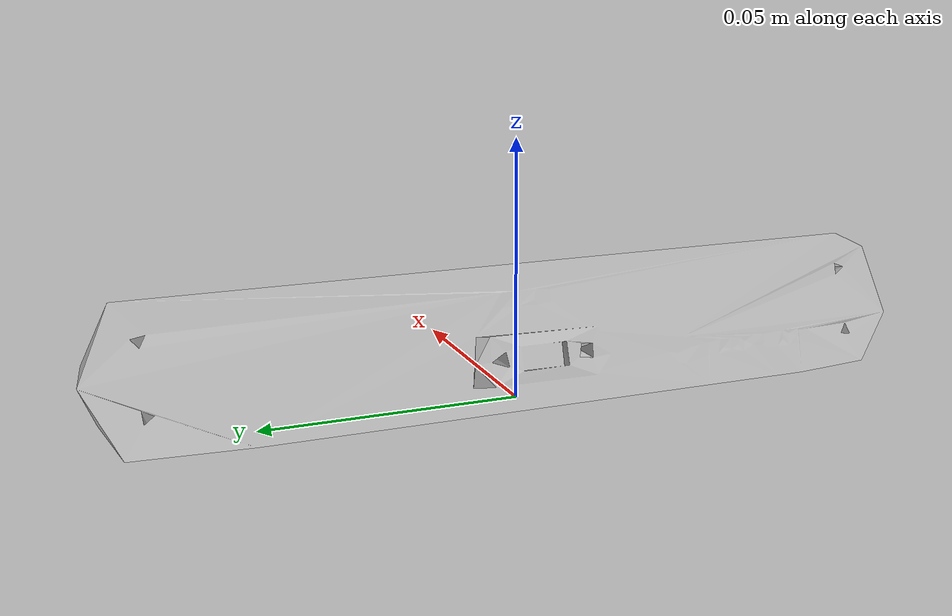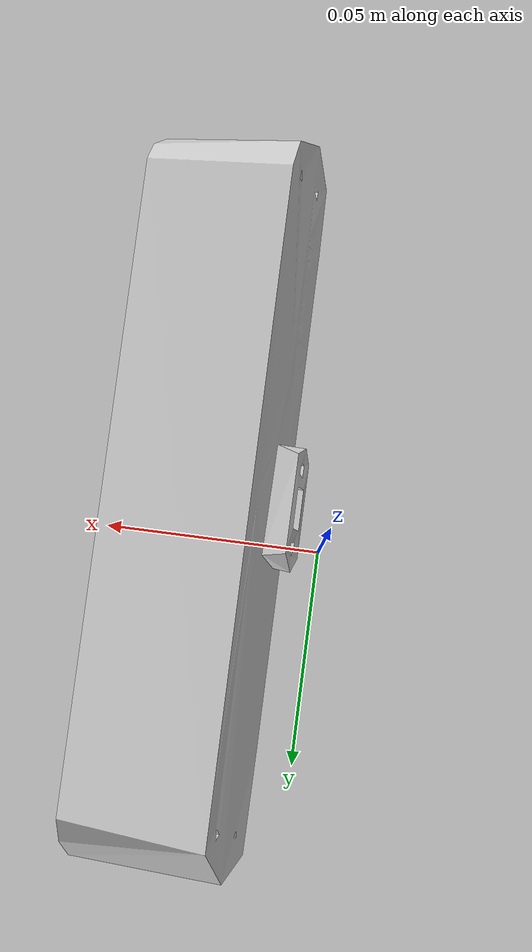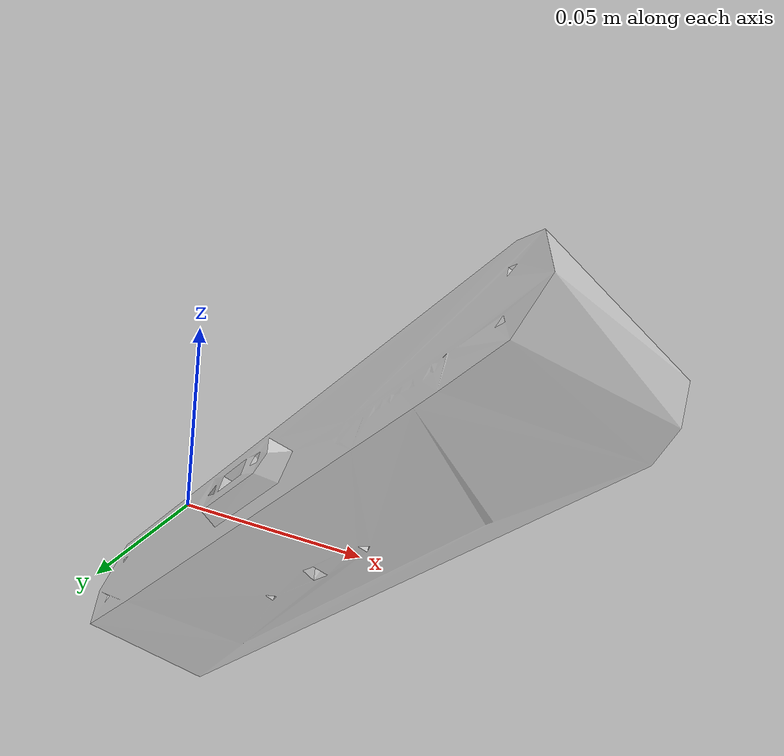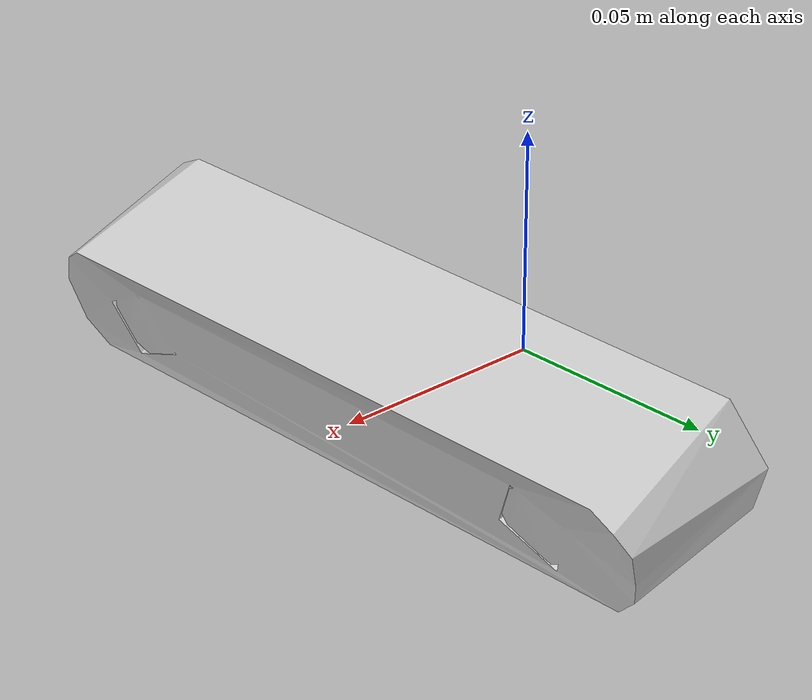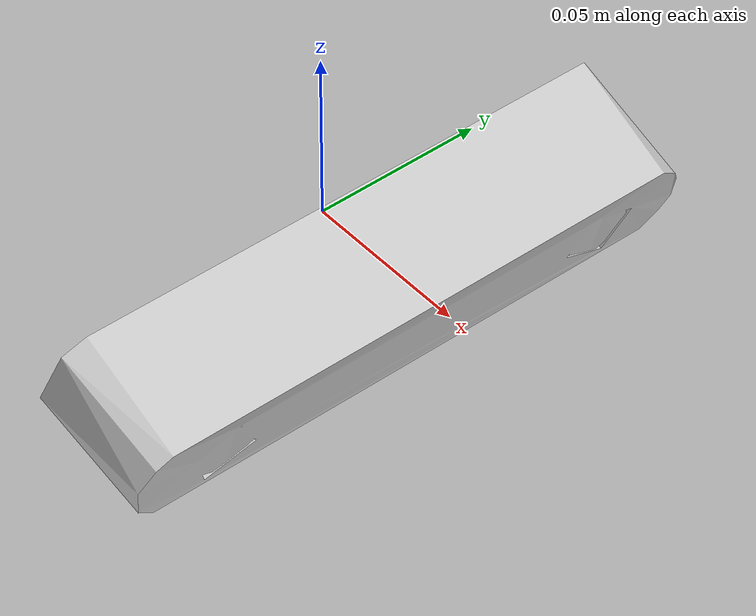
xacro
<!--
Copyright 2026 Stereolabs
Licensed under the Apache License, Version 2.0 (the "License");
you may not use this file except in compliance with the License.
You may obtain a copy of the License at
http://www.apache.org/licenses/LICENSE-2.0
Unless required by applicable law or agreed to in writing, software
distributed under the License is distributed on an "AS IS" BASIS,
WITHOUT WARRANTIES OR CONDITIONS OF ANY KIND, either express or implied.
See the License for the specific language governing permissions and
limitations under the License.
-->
<?xml version="1.0"?>

<robot name="stereolabs_camera" xmlns:xacro="http://ros.org/wiki/xacro">
  <xacro:arg name="camera_name"   default="zed" />
  <xacro:arg name="camera_model"  default="zed" />
  <xacro:arg name="custom_baseline"  default="0.0" />
  <!-- If GNSS fusion is enabled the position of the antenna with respect to the camera mount point is required -->
  <xacro:arg name="enable_gnss"   default="false" />
  <xacro:arg name="gnss_x" default="0.0" />
  <xacro:arg name="gnss_y" default="0.0" />
  <xacro:arg name="gnss_z" default="0.0" />

  <xacro:include filename="$(find zed_description)/urdf/zed_macro.urdf.xacro" />
  <xacro:zed_camera name="$(arg camera_name)" model="$(arg camera_model)" custom_baseline="$(arg custom_baseline)" enable_gnss="$(arg enable_gnss)">
	    <origin xyz="$(arg gnss_x) $(arg gnss_y) $(arg gnss_z)" rpy="0 0 0"/>
  </xacro:zed_camera>
</robot>

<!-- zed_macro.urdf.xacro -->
<robot xmlns:xacro="http://wiki.ros.org/xacro">
  <xacro:property name="M_PI"     value="3.1415926535897931" />

  <xacro:macro name="zed_camera" params="name=zed model=zed enable_gnss=false custom_baseline=0 *gnss_origin">
    <xacro:if value="${model == 'zed'}">
      <xacro:property name="baseline" value="0.12" />
      <xacro:property name="height" value="0.03" />
      <xacro:property name="bottom_slope" value="0.05" />
      <xacro:property name="screw_offset_x" value="0.0" />
      <xacro:property name="screw_offset_z" value="0.0" />
      <xacro:property name="optical_offset_x" value="-0.005" />
      <xacro:property name="mono" value="false" />
      <xacro:property name="mat" value="0.8 0.8 0.8 1.0" />
    </xacro:if>
    <xacro:if value="${model == 'zedm'}">
      <xacro:property name="baseline" value="0.063" />
      <xacro:property name="height" value="0.0265" />
      <xacro:property name="bottom_slope" value="0.0" />
      <xacro:property name="screw_offset_x" value="0.0" />
      <xacro:property name="screw_offset_z" value="0.0" />
      <xacro:property name="optical_offset_x" value="0.0" />
      <xacro:property name="mono" value="false" />
      <xacro:property name="mat" value="0 0 0 1.0" />
    </xacro:if>
    <xacro:if value="${model == 'zed2'}">
      <xacro:property name="baseline" value="0.12" />
      <xacro:property name="height" value="0.03" />
      <xacro:property name="bottom_slope" value="0.05" />
      <xacro:property name="screw_offset_x" value="0.0" />
      <xacro:property name="screw_offset_z" value="0.0" />
      <xacro:property name="optical_offset_x" value="-0.005" />
      <xacro:property name="mono" value="false" />
      <xacro:property name="mat" value="0.25 0.25 0.25 1.0" />
    </xacro:if>
    <xacro:if value="${model == 'zed2i'}">
      <xacro:property name="baseline" value="0.12" />
      <xacro:property name="height" value="0.03" />
      <xacro:property name="bottom_slope" value="0.0" />
      <xacro:property name="screw_offset_x" value="-0.01" />
      <xacro:property name="screw_offset_z" value="0.0" />
      <xacro:property name="optical_offset_x" value="-0.005" />
      <xacro:property name="mono" value="false" />
      <xacro:property name="mat" value="0.25 0.25 0.25 1.0" />
    </xacro:if>
    <xacro:if value="${model == 'zedx'}">
      <xacro:property name="baseline" value="0.12" />
      <xacro:property name="height" value="0.032" />
      <xacro:property name="bottom_slope" value="0.0" />
      <xacro:property name="screw_offset_x" value="0.0" />
      <xacro:property name="screw_offset_z" value="-0.016" />
      <xacro:property name="optical_offset_x" value="-0.005" />
      <xacro:property name="mono" value="false" />
      <xacro:property name="mat" value="0.25 0.25 0.25 1.0" />
    </xacro:if>
    <xacro:if value="${model == 'zedxhdr'}">
      <xacro:property name="baseline" value="0.12" />
      <xacro:property name="height" value="0.032" />
      <xacro:property name="bottom_slope" value="0.0" />
      <xacro:property name="screw_offset_x" value="0.0" />
      <xacro:property name="screw_offset_z" value="-0.016" />
      <xacro:property name="optical_offset_x" value="-0.005" />
      <xacro:property name="mono" value="false" />
      <xacro:property name="mat" value="0.25 0.25 0.25 1.0" />
    </xacro:if>
    <xacro:if value="${model == 'zedxm'}">
      <xacro:property name="baseline" value="0.05" />
      <xacro:property name="height" value="0.032" />
      <xacro:property name="bottom_slope" value="0.0" />
      <xacro:property name="screw_offset_x" value="0.0" />
      <xacro:property name="screw_offset_z" value="-0.016" />
      <xacro:property name="optical_offset_x" value="-0.005" />
      <xacro:property name="mono" value="false" />
      <xacro:property name="mat" value="0.25 0.25 0.25 1.0" />
    </xacro:if>
    <xacro:if value="${model == 'zedxnano'}">
      <xacro:property name="baseline" value="0.018" />
      <xacro:property name="height" value="0.0305" />
      <xacro:property name="bottom_slope" value="0.0" />
      <xacro:property name="screw_offset_x" value="0.0" />
      <xacro:property name="screw_offset_z" value="-0.01525" />
      <xacro:property name="optical_offset_x" value="-0.0035" />
      <xacro:property name="mono" value="false" />
      <xacro:property name="mat" value="0.25 0.25 0.25 1.0" />
    </xacro:if>
    <xacro:if value="${model == 'zedxhdrmini'}">
      <xacro:property name="baseline" value="0.05" />
      <xacro:property name="height" value="0.032" />
      <xacro:property name="bottom_slope" value="0.0" />
      <xacro:property name="screw_offset_x" value="0.0" />
      <xacro:property name="screw_offset_z" value="-0.016" />
      <xacro:property name="optical_offset_x" value="-0.005" />
      <xacro:property name="mono" value="false" />
      <xacro:property name="mat" value="0.25 0.25 0.25 1.0" />
    </xacro:if>
    <xacro:if value="${model == 'zedxhdrmax'}">
      <xacro:property name="baseline" value="0.170" />
      <xacro:property name="height" value="0.032" />
      <xacro:property name="bottom_slope" value="0.0" />
      <xacro:property name="screw_offset_x" value="0.0" />
      <xacro:property name="screw_offset_z" value="-0.016" />
      <xacro:property name="optical_offset_x" value="-0.005" />
      <xacro:property name="mono" value="false" />
      <xacro:property name="mat" value="0.25 0.25 0.25 1.0" />
    </xacro:if>
    <xacro:if value="${model == 'virtual'}">
      <xacro:property name="baseline" value="${custom_baseline}" />
      <xacro:property name="height" value="0.031" />
      <xacro:property name="bottom_slope" value="0.0" />
      <xacro:property name="screw_offset_x" value="0.00" />
      <xacro:property name="screw_offset_z" value="-0.0155" />
      <xacro:property name="optical_offset_x" value="0.0" />
      <xacro:property name="mono" value="false" />
      <xacro:property name="mat" value="0.25 0.25 0.25 1.0" />
    </xacro:if>
    <xacro:if value="${model == 'zedxonegs'}">
      <xacro:property name="baseline" value="0.0" />
      <xacro:property name="height" value="0.031" />
      <xacro:property name="bottom_slope" value="0.0" />
      <xacro:property name="screw_offset_x" value="0.0" />
      <xacro:property name="screw_offset_z" value="-0.0155" />
      <xacro:property name="optical_offset_x" value="-0.005" />
      <xacro:property name="mono" value="true" />
      <xacro:property name="mat" value="0.25 0.25 0.25 1.0" />
    </xacro:if>
    <xacro:if value="${model == 'zedxones'}">
      <xacro:property name="baseline" value="0.0" />
      <xacro:property name="height" value="0.025" />
      <xacro:property name="bottom_slope" value="0.0" />
      <xacro:property name="screw_offset_x" value="0.0" />
      <xacro:property name="screw_offset_z" value="-0.0125" />
      <xacro:property name="optical_offset_x" value="0.0" />
      <xacro:property name="mono" value="true" />
      <xacro:property name="mat" value="0.25 0.25 0.25 1.0" />
    </xacro:if>
    <xacro:if value="${model == 'zedxone4k'}">
      <xacro:property name="baseline" value="0.0" />
      <xacro:property name="height" value="0.031" />
      <xacro:property name="bottom_slope" value="0.0" />
      <xacro:property name="screw_offset_x" value="0.00" />
      <xacro:property name="screw_offset_z" value="-0.0155" />
      <xacro:property name="optical_offset_x" value="0.0" />
      <xacro:property name="mono" value="true" />
      <xacro:property name="mat" value="0.25 0.25 0.25 1.0" />
    </xacro:if>
    <xacro:if value="${model == 'zedxonehdr'}">
      <xacro:property name="baseline" value="0.0" />
      <xacro:property name="height" value="0.025" />
      <xacro:property name="bottom_slope" value="0.0" />
      <xacro:property name="screw_offset_x" value="0.00" />
      <xacro:property name="screw_offset_z" value="-0.0125" />
      <xacro:property name="optical_offset_x" value="0.0" />
      <xacro:property name="mono" value="true" />
      <xacro:property name="mat" value="0.25 0.25 0.25 1.0" />
    </xacro:if>
    <xacro:if value="${model == 'zedxonecore'}">
      <xacro:property name="baseline" value="0.0" />
      <xacro:property name="height" value="0.027" />
      <xacro:property name="bottom_slope" value="0.0" />
      <xacro:property name="screw_offset_x" value="0.00" />
      <xacro:property name="screw_offset_z" value="-0.0135" />
      <xacro:property name="optical_offset_x" value="0.00086" />
      <xacro:property name="mono" value="true" />
      <xacro:property name="mat" value="0.25 0.25 0.25 1.0" />
    </xacro:if>

    <!-- Camera mounting point (the threaded screw hole in the bottom) -->
    <link name="${name}_camera_link" />

    <!-- Camera Center -->
    <link name="${name}_camera_center">
      <xacro:unless value="${model == 'virtual'}">
        <visual>
          <origin xyz="${screw_offset_x} 0 ${screw_offset_z}" rpy="0 0 0"/>
          <geometry>
            <mesh filename="package://zed_description/meshes/${model}.stl"/>
          </geometry>
          <material name="cam_mat">
            <color rgba="${mat}"/>
          </material>
        </visual>
        <collision>
          <origin xyz="${screw_offset_x} 0 ${screw_offset_z}" rpy="0 0 0"/>
          <geometry>
            <mesh filename="package://zed_description/meshes/${model}.stl"/>
          </geometry>
        </collision>
      </xacro:unless>
    </link>
    <joint name="${name}_camera_center_joint" type="fixed">
      <parent link="${name}_camera_link"/>
      <child link="${name}_camera_center"/>
      <origin xyz="0 0 ${height/2}" rpy="0 ${bottom_slope} 0" />
    </joint>

    <xacro:unless value="${mono}">
      <!-- Left Camera -->
      <link name="${name}_left_camera_frame">
        <xacro:if value="${model == 'virtual'}">
          <visual>
            <origin xyz="0 0 0" rpy="0 0 0"/>
            <geometry>
              <mesh filename="package://zed_description/meshes/${model}.stl"/>
            </geometry>
            <material name="cam_mat">
              <color rgba="${mat}"/>
            </material>
          </visual>
          <collision>
            <origin xyz="0 0 0" rpy="0 0 0"/>
            <geometry>
              <mesh filename="package://zed_description/meshes/${model}.stl"/>
            </geometry>
          </collision>
        </xacro:if>
      </link>
      <joint name="${name}_left_camera_joint" type="fixed">
        <parent link="${name}_camera_center"/>
        <child link="${name}_left_camera_frame"/>
        <origin xyz="${optical_offset_x} ${baseline/2} 0" rpy="0 0 0" />
      </joint>

<link name="${name}_left_camera_frame_optical"/>
      <joint name="${name}_left_camera_optical_joint" type="fixed">
        <origin xyz="0 0 0" rpy="-${M_PI/2} 0.0 -${M_PI/2}"/>
        <parent link="${name}_left_camera_frame"/>
<child link="${name}_left_camera_frame_optical"/>
      </joint>

      <!-- Right Camera -->
      <link name="${name}_right_camera_frame">
        <xacro:if value="${model == 'virtual'}">
          <visual>
            <origin xyz="0 0 0" rpy="0 0 0"/>
            <geometry>
              <mesh filename="package://zed_description/meshes/${model}.stl"/>
            </geometry>
            <material name="cam_mat">
              <color rgba="${mat}"/>
            </material>
          </visual>
          <collision>
            <origin xyz="0 0 0" rpy="0 0 0"/>
            <geometry>
              <mesh filename="package://zed_description/meshes/${model}.stl"/>
            </geometry>
          </collision>
        </xacro:if>
      </link>
      <joint name="${name}_right_camera_joint" type="fixed">
        <parent link="${name}_camera_center"/>
        <child link="${name}_right_camera_frame"/>
        <origin xyz="${optical_offset_x} -${baseline/2} 0" rpy="0 0 0" />
      </joint>

<link name="${name}_right_camera_frame_optical"/>
      <joint name="${name}_right_camera_optical_joint" type="fixed">
        <origin xyz="0 0 0" rpy="-${M_PI/2} 0.0 -${M_PI/2}"/>
        <parent link="${name}_right_camera_frame"/>
<child link="${name}_right_camera_frame_optical"/>
      </joint>

      <!-- ZED2 Sensors -->
      <xacro:if value="${model == 'zed2'}">
        <link name="${name}_mag_link" />
        <joint name="${name}_mag_joint" type="fixed">
          <parent link="${name}_camera_center"/>
          <child link="${name}_mag_link"/>
          <origin xyz="0 0 0" rpy="0 0 0" />
        </joint>

        <link name="${name}_baro_link" />
        <joint name="${name}_baro_joint" type="fixed">
          <parent link="${name}_camera_center"/>
          <child link="${name}_baro_link"/>
          <origin xyz="0 0 0" rpy="0 0 0" />
        </joint>

        <link name="${name}_temp_left_link" />
        <joint name="${name}_temp_left_joint" type="fixed">
          <parent link="${name}_left_camera_frame"/>
          <child link="${name}_temp_left_link"/>
          <origin xyz="0 0 0" rpy="0 0 0" />
        </joint>

        <link name="${name}_temp_right_link" />
        <joint name="${name}_temp_right_joint" type="fixed">
          <parent link="${name}_right_camera_frame"/>
          <child link="${name}_temp_right_link"/>
          <origin xyz="0 0 0" rpy="0 0 0" />
        </joint>
      </xacro:if>
    </xacro:unless>

    <xacro:if value="${mono}">
      <!-- Camera -->
      <link name="${name}_camera_frame" />
      <joint name="${name}_camera_joint" type="fixed">
        <parent link="${name}_camera_center"/>
        <child link="${name}_camera_frame"/>
        <origin xyz="${optical_offset_x} 0 0" rpy="0 0 0" />
      </joint>

<link name="${name}_camera_frame_optical"/>
      <joint name="${name}_camera_optical_joint" type="fixed">
        <origin xyz="0 0 0" rpy="-${M_PI/2} 0.0 -${M_PI/2}"/>
        <parent link="${name}_camera_frame"/>
<child link="${name}_camera_frame_optical"/>
      </joint>
    </xacro:if>

    <xacro:if value="${enable_gnss}">
      <link name="${name}_gnss_link" />
      <joint name="${name}_gnss_joint" type="fixed">
        <parent link="${name}_camera_link"/>
        <child link="${name}_gnss_link"/>
        <xacro:insert_block name="gnss_origin" />
      </joint>
    </xacro:if>

  </xacro:macro>
</robot>
